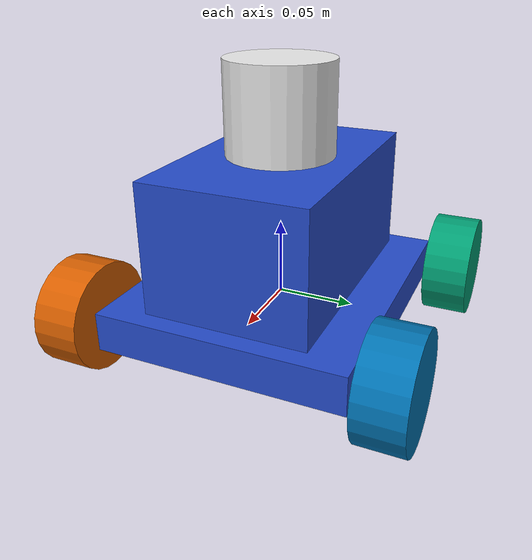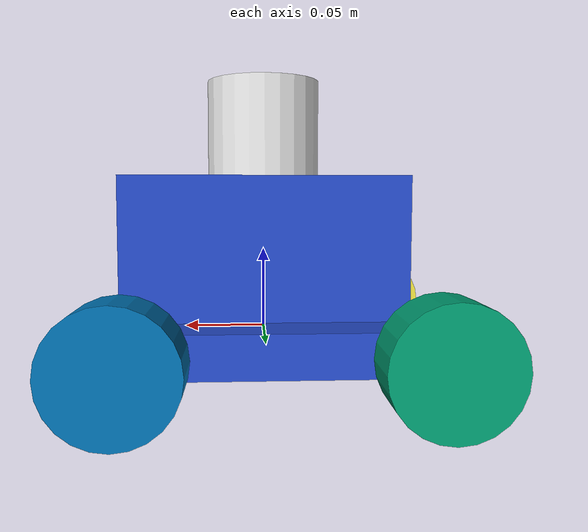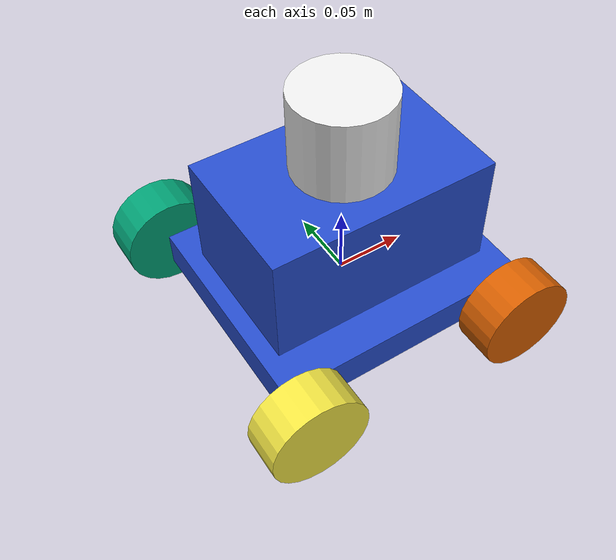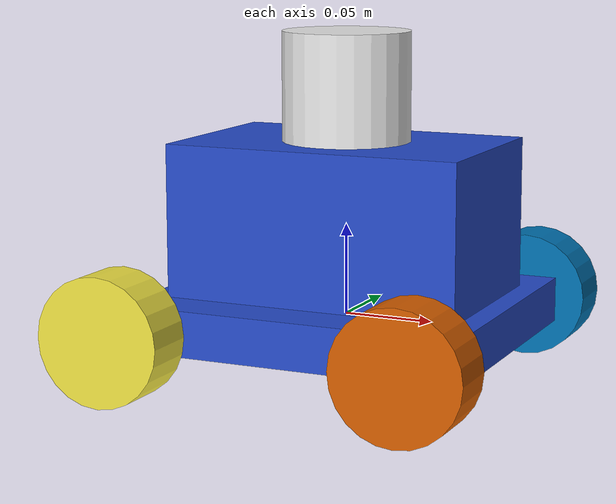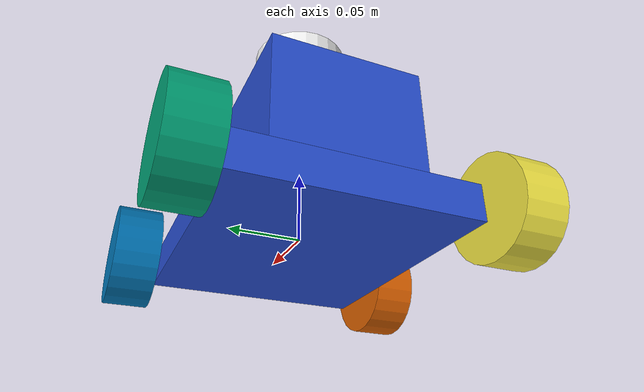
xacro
<?xml version="1.0" ?>
<robot name="my_rover" xmlns:xacro="http://www.ros.org/wiki/xacro">

  <xacro:include filename="$(find my_rover_description)/urdf/materials.xacro" />
  <xacro:include filename="$(find my_rover_description)/urdf/macros.xacro" />

  <link name="link_chassis">
    <!-- pose and inertial -->
    <pose>0 0 0.027 0 0 0</pose>
    <inertial>
      <mass value="5"/>
      <origin rpy="0 0 0" xyz="0 0 0.027"/>
      <inertia ixx="0.0395416666667" ixy="0" ixz="0" iyy="0.106208333333" iyz="0" izz="0.106208333333"/>
    </inertial>
    <!-- body -->
    <collision name="collision_chassis">
      <geometry>
        <box size="0.19 0.16 0.025"/>
      </geometry>
    </collision>
    <visual>
      <origin rpy="0 0 0" xyz="0 0 0"/>
      <geometry>
        <box size="0.19 0.16 0.025"/>
      </geometry>
      <material name="blue"/>
    </visual>

    <collision name="collision_electronics">
      <geometry>
        <box size="0.165 0.105 0.072"/>
      </geometry>
    </collision>

    <visual>
      <origin rpy="0 0 0" xyz="0 0 0.05"/>
      <geometry>
        <box size="0.165 0.105 0.092"/>
      </geometry>
      <material name="blue"/>
    </visual>

  </link>

  <link name="laser">
    <inertial>
      <origin xyz="0 0 0" rpy="0 0 0" />
      <mass value=".1" />
      <xacro:cylinder_inertia mass=".1" r="0.05" l="0.1" />
    </inertial>

    <visual>
      <origin xyz="0 0 0" rpy="0 0 0" />
      <geometry>
        <cylinder radius="0.035" length="0.061"/>
      </geometry>
      <material name="white" />
    </visual>

    <collision>
      <origin xyz="0 0 0" rpy="0 0 0"/>
      <geometry>
        <cylinder radius="0.035" length="0.061"/>
      </geometry>
    </collision>
  </link>

  <joint name="laser_joint" type="fixed">
    <origin xyz="0 0 0.125" rpy="0 0 0"/>
    <parent link="link_chassis"/>
    <child link="laser"/>
  </joint>

  <xacro:link_wheel name="link_right_front_wheel" />
  <xacro:joint_wheel name="joint_right_front_wheel" child="link_right_front_wheel" origin_xyz="-0.09 0.1 0" />

  <xacro:link_wheel name="link_left_front_wheel" />
  <xacro:joint_wheel name="joint_left_front_wheel" child="link_left_front_wheel" origin_xyz="-0.09 -0.1 0" />

  <xacro:link_wheel name="link_right_back_wheel" />
  <xacro:joint_wheel name="joint_right_rear_wheel" child="link_right_back_wheel" origin_xyz="0.075 0.1 0" />

  <xacro:link_wheel name="link_left_back_wheel" />
  <xacro:joint_wheel name="joint_left_rear_wheel" child="link_left_back_wheel" origin_xyz="0.075 -0.1 0" />

  <transmission name="simple_trans">
    <type>transmission_interface/SimpleTransmission</type>
    <joint name="joint_right_front_wheel">
      <hardwareInterface>EffortJointInterface</hardwareInterface>
    </joint>
    <actuator name="right_motor">
      <mechanicalReduction>50</mechanicalReduction>
      <hardwareInterface>EffortJointInterface</hardwareInterface>
    </actuator>
  </transmission>

  <transmission name="simple_trans2">
    <type>transmission_interface/SimpleTransmission</type>
    <joint name="joint_left_front_wheel">
      <hardwareInterface>EffortJointInterface</hardwareInterface>
    </joint>
    <actuator name="left_motor">
      <mechanicalReduction>50</mechanicalReduction>
      <hardwareInterface>EffortJointInterface</hardwareInterface>
    </actuator>
  </transmission>

</robot>

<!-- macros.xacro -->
<robot xmlns:xacro="http://www.ros.org/wiki/xacro">
    <xacro:macro name="link_wheel" params="name">
        <link name="${name}">
            <inertial>
              <mass value="0.1"/>
              <origin rpy="0 1.5707 1.5707" xyz="0 0 0"/>
              <inertia ixx="0.000526666666667" ixy="0" ixz="0" iyy="0.000526666666667" iyz="0" izz="0.001"/>
            </inertial>
            <collision name="link_right_wheel_collision">
              <origin rpy="0 1.5707 1.5707" xyz="0 0 0"/>
              <geometry>
                <cylinder length="0.03" radius="0.035"/>
              </geometry>
            </collision>
            <visual name="${name}_visual">
              <origin rpy="0 1.5707 1.5707" xyz="0 0 0"/>
              <geometry>
                <cylinder length="0.03" radius="0.035"/>
              </geometry>
            </visual>
        </link>
    </xacro:macro>

    <xacro:macro name="joint_wheel" params="name child origin_xyz">
      <joint name="${name}" type="continuous">
        <origin rpy="0 0 0" xyz="${origin_xyz}"/>
        <child link="${child}"/>
        <parent link="link_chassis"/>
        <axis rpy="0 0 0" xyz="0 1 0"/>
        <limit effort="10000" velocity="1000"/>
        <joint_properties damping="1.0" friction="1.0"/>
      </joint>
    </xacro:macro>

    <xacro:macro name="cylinder_inertia" params="mass r l">
      <inertia  ixx="${mass*(3*r*r+l*l)/12}" ixy = "0" ixz = "0"
                iyy="${mass*(3*r*r+l*l)/12}" iyz = "0"
                izz="${mass*(r*r)/2}" />
    </xacro:macro>
</robot>
